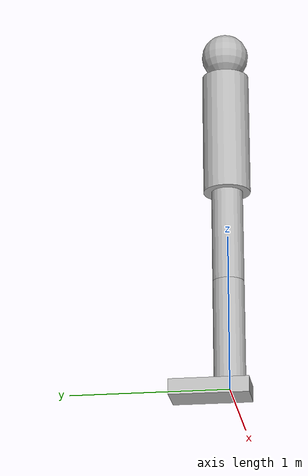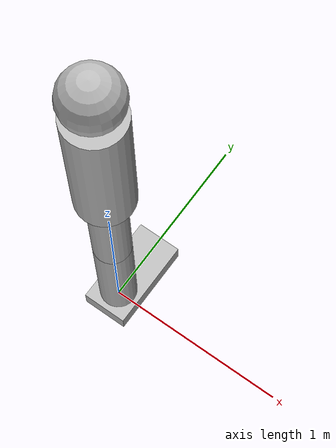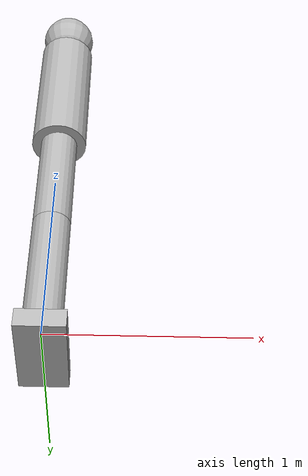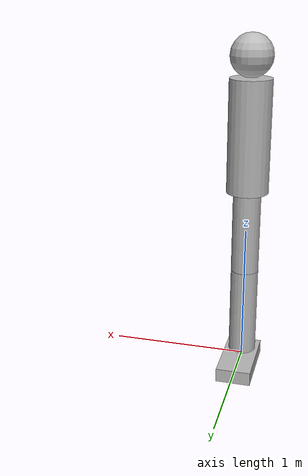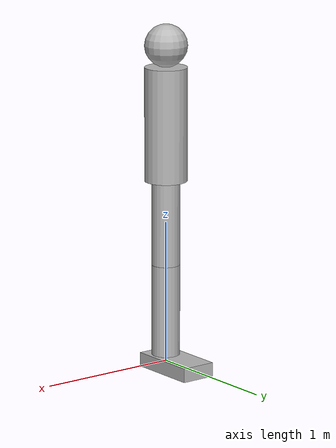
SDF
<?xml version="1.0" ?>
<!-- Model of a noodle man
Toyota Research Institute-->
<sdf version="1.7">

  <model name='noodleman'>
    <pose>0.0 0.0 0.0 0 0 0</pose>

    <link name='torso'>
      <pose>0 0 1.7 0 0 0</pose>
      <inertial>
        <mass>40</mass>
      </inertial>
      <visual name="cap_torso">
        <pose>0 0 0.0 0 0 0</pose>
        <geometry>
          <cylinder>
            <radius>0.15</radius>
            <length>0.80</length>
          </cylinder>
        </geometry>
      </visual>
      <visual name="sph_head">
        <pose>0 0 0.55 0 0 0</pose>
        <geometry>
          <sphere>
            <radius>0.15</radius>
          </sphere>
        </geometry>
      </visual>
      <collision name="coll_cap_torso">
        <pose>0 0 0.0 0 0 0</pose>
        <geometry>
          <cylinder>
            <radius>0.15</radius>
            <length>0.80</length>
          </cylinder>
        </geometry>
        <drake:proximity_properties>
          <drake:compliant_hydroelastic/>
          <drake:hydroelastic_modulus>2.5e7</drake:hydroelastic_modulus>
          <drake:mesh_resolution_hint>0.01</drake:mesh_resolution_hint>
          <drake:mu_dynamic>0.1</drake:mu_dynamic>
          <drake:mu_static>0.1</drake:mu_static>
          <drake:hunt_crossley_dissipation>0.25</drake:hunt_crossley_dissipation>
        </drake:proximity_properties>
      </collision>
      <collision name="coll_sph_head">
        <pose>0 0 0.55 0 0 0</pose>
        <geometry>
          <sphere>
            <radius>0.15</radius>
          </sphere>
        </geometry>
        <drake:proximity_properties>
          <drake:compliant_hydroelastic/>
          <drake:hydroelastic_modulus>2.5e7</drake:hydroelastic_modulus>
          <drake:mesh_resolution_hint>0.01</drake:mesh_resolution_hint>
          <drake:mu_dynamic>0.1</drake:mu_dynamic>
          <drake:mu_static>0.1</drake:mu_static>
          <drake:hunt_crossley_dissipation>0.25</drake:hunt_crossley_dissipation>
        </drake:proximity_properties>
      </collision>
    </link>

    <link name='upper_leg'>
      <pose>0 0 1 0 0 0</pose>
      <inertial>
        <mass>20</mass>
      </inertial>
      <visual name="cap_uleg">
        <pose>0 0 0.0 0 0 0</pose>
        <geometry>
          <cylinder>
            <radius>0.1</radius>
            <length>0.6</length>
          </cylinder>
        </geometry>
      </visual>
      <collision name="coll_cap_uleg">
        <pose>0 0 0.0 0 0 0</pose>
        <geometry>
          <cylinder>
            <radius>0.1</radius>
            <length>0.6</length>
          </cylinder>
        </geometry>
        <drake:proximity_properties>
          <drake:compliant_hydroelastic/>
          <drake:hydroelastic_modulus>2.5e7</drake:hydroelastic_modulus>
          <drake:mesh_resolution_hint>0.01</drake:mesh_resolution_hint>
          <drake:mu_dynamic>0.1</drake:mu_dynamic>
          <drake:mu_static>0.1</drake:mu_static>
          <drake:hunt_crossley_dissipation>0.25</drake:hunt_crossley_dissipation>
        </drake:proximity_properties>
      </collision>
    </link>

    <link name='lower_leg'>
      <pose>0 0 0.35 0 0 0</pose>
      <inertial>
        <mass>10</mass>
      </inertial>
      <visual name="cap_lleg">
        <pose>0 0 0 0 0 0</pose>
        <geometry>
          <cylinder>
            <radius>0.1</radius>
            <length>0.7</length>
          </cylinder>
        </geometry>
      </visual>
      <collision name="coll_cap_lleg">
        <pose>0 0 0 0 0 0</pose>
        <geometry>
          <cylinder>
            <radius>0.1</radius>
            <length>0.7</length>
          </cylinder>
        </geometry>
        <drake:proximity_properties>
          <drake:compliant_hydroelastic/>
          <drake:hydroelastic_modulus>2.5e7</drake:hydroelastic_modulus>
          <drake:mesh_resolution_hint>0.01</drake:mesh_resolution_hint>
          <drake:mu_dynamic>0.1</drake:mu_dynamic>
          <drake:mu_static>0.1</drake:mu_static>
          <drake:hunt_crossley_dissipation>0.25</drake:hunt_crossley_dissipation>
        </drake:proximity_properties>
      </collision>
    </link>

    <link name='foot'>
      <pose>0 0.12 0.0 0 0 0</pose>
      <inertial>
        <mass>10</mass>
      </inertial>
      <visual name="cap_lleg">
        <pose>0 0 0 0 0 0</pose>
        <geometry>
          <box>
            <size>0.25 0.5 0.1</size>
          </box>
        </geometry>
      </visual>
      <collision name="coll_cap_lleg">
        <pose>0 0 0 0 0 0</pose>
        <geometry>
          <box>
            <size>0.25 0.5 0.1</size>
          </box>
        </geometry>
        <drake:proximity_properties>
          <drake:compliant_hydroelastic/>
          <drake:hydroelastic_modulus>2.5e7</drake:hydroelastic_modulus>
          <drake:mesh_resolution_hint>0.01</drake:mesh_resolution_hint>
          <drake:mu_dynamic>0.1</drake:mu_dynamic>
          <drake:mu_static>0.1</drake:mu_static>
          <drake:hunt_crossley_dissipation>0.25</drake:hunt_crossley_dissipation>
        </drake:proximity_properties>
      </collision>
    </link>

   <!-- revolute joint for hip: upper_leg link wrt torso-->
    <joint name='hip_joint' type='revolute'>
      <parent>upper_leg</parent>
      <child>torso</child>
      <pose>0 0 -0.35 0 0 0 </pose>
      <axis>
        <xyz>1.0 0.0 0.0</xyz>
        <limit>
          <lower>-2</lower>
          <upper>0.1</upper>
          <effort>10.0</effort>
        </limit>
        <dynamics>
          <friction>0.1</friction>
        </dynamics>
      </axis>
    </joint>

    <!-- revolute joint for knee: lower_leg link wrt upper_leg-->
    <joint name='knee_joint' type='revolute'>
      <parent>lower_leg</parent>
      <child>upper_leg</child>
      <pose>0 0 -0.3 0 0 0 </pose>
      <axis>
        <xyz>1.0 0.0 0.0</xyz>
        <limit>
          <lower>-0.1</lower>
          <upper>2</upper>
          <effort>10.0</effort>
        </limit>
        <dynamics>
          <friction>0.1</friction>
        </dynamics>
      </axis>
    </joint>

    <!-- revolute joint for ankle: lower_leg link wrt upper_leg-->
    <joint name='ankle_joint' type='revolute'>
      <parent>foot</parent>
      <child>lower_leg</child>
      <pose>0 0 -0.3 0 0 0 </pose>
      <axis>
        <xyz>1.0 0.0 0.0</xyz>
        <limit>
          <lower>-0.6</lower>
          <upper>0.5</upper>
          <effort>10.0</effort>
        </limit>
        <dynamics>
          <friction>0.1</friction>
        </dynamics>
      </axis>
    </joint>

  </model>
</sdf>
